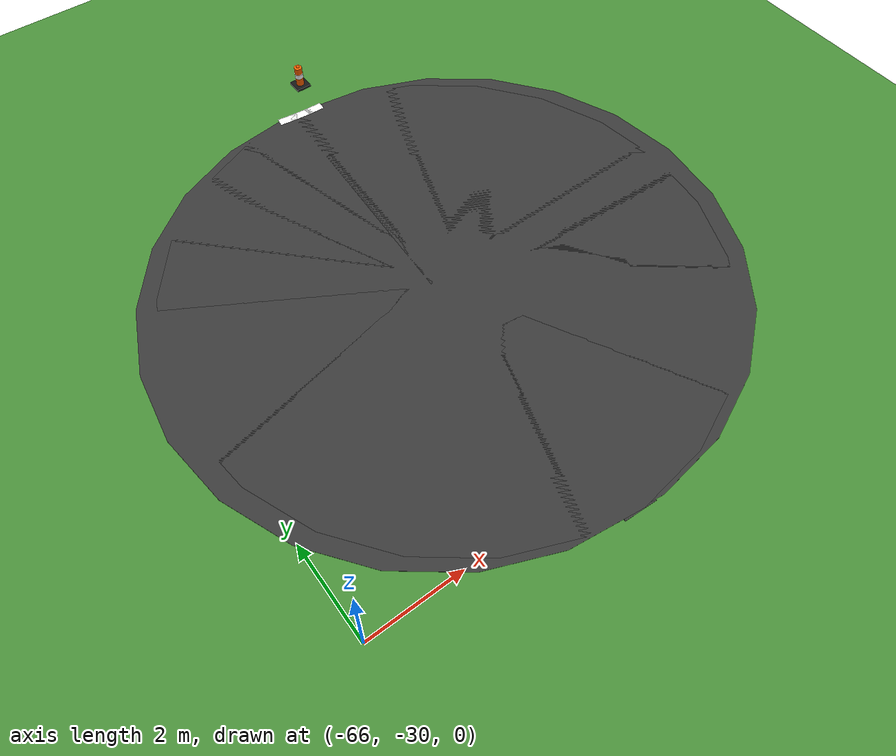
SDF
<sdf version="1.6">
 <world name="sem_silesia_ring_2026">
  <model name="ground_plane">
   <static>true</static>
   <link name="link">
    <collision name="collision">
     <geometry><plane><normal>0 0 1</normal><size>600 600</size></plane></geometry>
     <surface><friction><ode><mu>0.6</mu><mu2>0.6</mu2></ode></friction></surface>
    </collision>
    <visual name="visual">
     <geometry><plane><normal>0 0 1</normal><size>600 600</size></plane></geometry>
     <material><ambient>0.28 0.55 0.22 1</ambient><diffuse>0.28 0.55 0.22 1</diffuse></material>
    </visual>
   </link>
  </model>
  <model name="road_L_jnt88">
   <static>true</static>
   <pose>-60.8720 -24.9696 0.0030 0 0 0</pose>
   <link name="link">
    <visual name="v">
     <geometry><cylinder><radius>6.0000</radius><length>0.0060</length></cylinder></geometry>
     <material><ambient>0.22 0.22 0.22 1</ambient><diffuse>0.22 0.22 0.22 1</diffuse></material>
    </visual>
    <collision name="c">
     <geometry><cylinder><radius>6.0000</radius><length>0.0060</length></cylinder></geometry>
     <surface><friction><ode><mu>0.9</mu><mu2>0.9</mu2></ode></friction></surface>
    </collision>
   </link>
  </model>
  <model name="road_L_s88">
   <static>true</static>
   <pose>-60.6542 -24.9829 0.0030 0 0 6.2308</pose>
   <link name="link">
    <visual name="v">
     <geometry><box><size>0.6957 12.0000 0.0060</size></box></geometry>
     <material><ambient>0.22 0.22 0.22 1</ambient><diffuse>0.22 0.22 0.22 1</diffuse></material>
    </visual>
    <collision name="c">
     <geometry><box><size>0.6957 12.0000 0.0060</size></box></geometry>
     <surface><friction><ode><mu>0.9</mu><mu2>0.9</mu2></ode></friction></surface>
    </collision>
   </link>
  </model>
  <model name="road_L_jnt89">
   <static>true</static>
   <pose>-60.4362 -24.9924 0.0030 0 0 0</pose>
   <link name="link">
    <visual name="v">
     <geometry><cylinder><radius>6.0000</radius><length>0.0060</length></cylinder></geometry>
     <material><ambient>0.22 0.22 0.22 1</ambient><diffuse>0.22 0.22 0.22 1</diffuse></material>
    </visual>
    <collision name="c">
     <geometry><cylinder><radius>6.0000</radius><length>0.0060</length></cylinder></geometry>
     <surface><friction><ode><mu>0.9</mu><mu2>0.9</mu2></ode></friction></surface>
    </collision>
   </link>
  </model>
  <model name="wl_Li_s57">
   <static>true</static>
   <pose>-60.8615 -19.0435 0.0050 0 0 6.1523</pose>
   <link name="link">
    <visual name="v">
     <geometry><box><size>0.4008 0.2000 0.0040</size></box></geometry>
     <material><ambient>1 1 1 1</ambient><diffuse>1 1 1 1</diffuse></material>
    </visual>
    <collision name="c">
     <geometry><box><size>0.4008 0.2000 0.0040</size></box></geometry>
     <surface><friction><ode><mu>0.9</mu><mu2>0.9</mu2></ode></friction></surface>
    </collision>
   </link>
  </model>
  <model name="wl_Li_jnt58">
   <static>true</static>
   <pose>-60.6899 -19.0638 0.0050 0 0 0</pose>
   <link name="link">
    <visual name="v">
     <geometry><cylinder><radius>0.1000</radius><length>0.0040</length></cylinder></geometry>
     <material><ambient>1 1 1 1</ambient><diffuse>1 1 1 1</diffuse></material>
    </visual>
    <collision name="c">
     <geometry><cylinder><radius>0.1000</radius><length>0.0040</length></cylinder></geometry>
     <surface><friction><ode><mu>0.9</mu><mu2>0.9</mu2></ode></friction></surface>
    </collision>
   </link>
  </model>
  <model name="wl_Li_s58">
   <static>true</static>
   <pose>-60.5178 -19.0797 0.0050 0 0 6.2046</pose>
   <link name="link">
    <visual name="v">
     <geometry><box><size>0.4008 0.2000 0.0040</size></box></geometry>
     <material><ambient>1 1 1 1</ambient><diffuse>1 1 1 1</diffuse></material>
    </visual>
    <collision name="c">
     <geometry><box><size>0.4008 0.2000 0.0040</size></box></geometry>
     <surface><friction><ode><mu>0.9</mu><mu2>0.9</mu2></ode></friction></surface>
    </collision>
   </link>
  </model>
  <model name="wl_Li_jnt59">
   <static>true</static>
   <pose>-60.3454 -19.0910 0.0050 0 0 0</pose>
   <link name="link">
    <visual name="v">
     <geometry><cylinder><radius>0.1000</radius><length>0.0040</length></cylinder></geometry>
     <material><ambient>1 1 1 1</ambient><diffuse>1 1 1 1</diffuse></material>
    </visual>
    <collision name="c">
     <geometry><cylinder><radius>0.1000</radius><length>0.0040</length></cylinder></geometry>
     <surface><friction><ode><mu>0.9</mu><mu2>0.9</mu2></ode></friction></surface>
    </collision>
   </link>
  </model>
  <model name="wl_Li_s59">
   <static>true</static>
   <pose>-60.1728 -19.0977 0.0050 0 0 6.2570</pose>
   <link name="link">
    <visual name="v">
     <geometry><box><size>0.4008 0.2000 0.0040</size></box></geometry>
     <material><ambient>1 1 1 1</ambient><diffuse>1 1 1 1</diffuse></material>
    </visual>
    <collision name="c">
     <geometry><box><size>0.4008 0.2000 0.0040</size></box></geometry>
     <surface><friction><ode><mu>0.9</mu><mu2>0.9</mu2></ode></friction></surface>
    </collision>
   </link>
  </model>
  <model name="cn_Li_8">
   <static>true</static>
   <pose>-60.0000 -18.2000 0 0 0 0</pose>
   <link name="link">
    <visual name="base">
     <pose>0 0 0.03 0 0 0</pose>
     <geometry><box><size>0.35 0.35 0.06</size></box></geometry>
     <material><ambient>0.08 0.08 0.08 1</ambient><diffuse>0.08 0.08 0.08 1</diffuse></material>
    </visual>
    <visual name="body">
     <pose>0 0 0.30 0 0 0</pose>
     <geometry><cylinder><radius>0.09</radius><length>0.50</length></cylinder></geometry>
     <material><ambient>1.0 0.38 0.0 1</ambient><diffuse>1.0 0.38 0.0 1</diffuse></material>
    </visual>
    <visual name="stripe">
     <pose>0 0 0.32 0 0 0</pose>
     <geometry><cylinder><radius>0.095</radius><length>0.12</length></cylinder></geometry>
     <material><ambient>1 1 1 1</ambient><diffuse>1 1 1 1</diffuse></material>
    </visual>
    <visual name="tip">
     <pose>0 0 0.57 0 0 0</pose>
     <geometry><sphere><radius>0.04</radius></sphere></geometry>
     <material><ambient>1.0 0.38 0.0 1</ambient><diffuse>1.0 0.38 0.0 1</diffuse></material>
    </visual>
    <collision name="c">
     <pose>0 0 0.28 0 0 0</pose>
     <geometry><cylinder><radius>0.09</radius><length>0.56</length></cylinder></geometry>
    </collision>
   </link>
  </model>
 </world>
</sdf>
